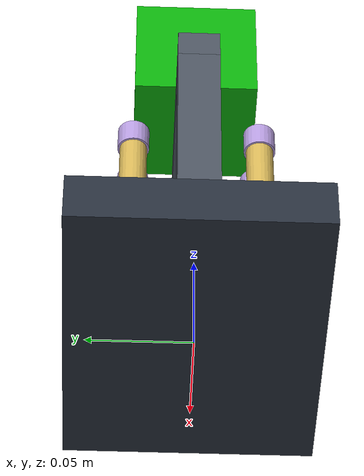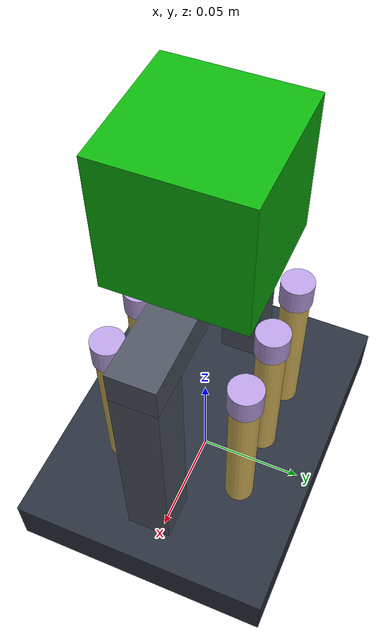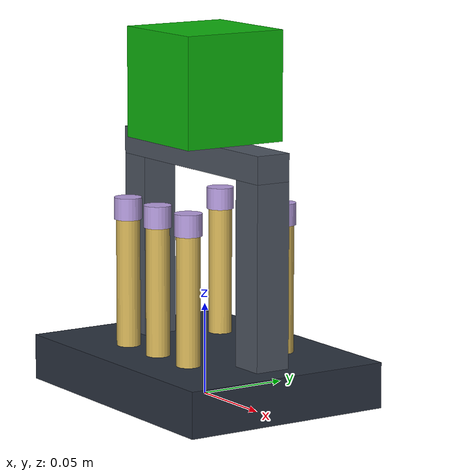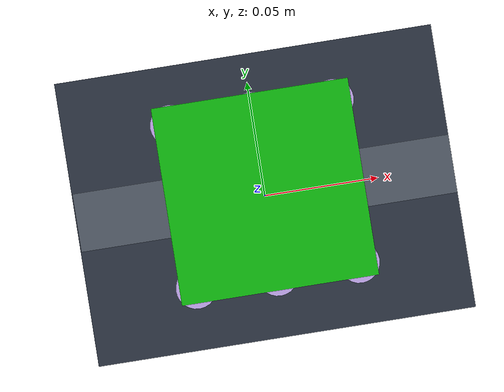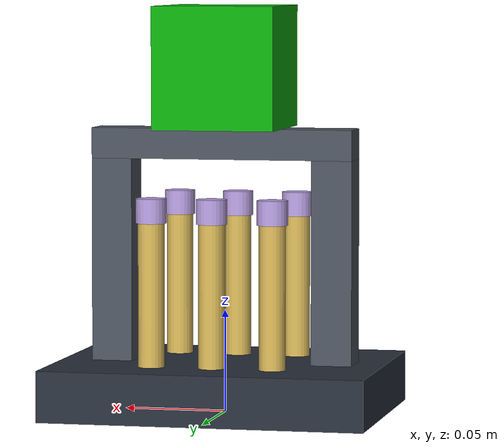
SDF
<?xml version="1.0" ?>
<sdf version="1.9">
  <model name="rack_green">
    <link name="link">

      <inertial>
        <pose>0 0 0.06 0 0 0</pose>
        <mass>0.30</mass>
        <inertia>
          <ixx>1.36e-3</ixx><ixy>0</ixy><ixz>0</ixz>
          <iyy>1.64e-3</iyy><iyz>0</iyz>
          <izz>1.00e-3</izz>
        </inertia>
      </inertial>

      <!-- tray -->
      <collision name="tray_collision">
        <pose>0 0 0.0125 0 0 0</pose>
        <geometry><box><size>0.16 0.12 0.025</size></box></geometry>
        <surface>
          <friction><ode><mu>0.7</mu><mu2>0.7</mu2></ode></friction>
          <contact><ode><kp>1e6</kp><kd>1.0</kd></ode></contact>
        </surface>
      </collision>
      <visual name="tray_visual">
        <pose>0 0 0.0125 0 0 0</pose>
        <geometry><box><size>0.16 0.12 0.025</size></box></geometry>
        <material>
          <ambient>0.10 0.12 0.16 1</ambient>
          <diffuse>0.16 0.19 0.24 1</diffuse>
          <specular>0.2 0.2 0.2 1</specular>
        </material>
      </visual>

      <!-- six tubes, 3 along x by 2 along y (visual only) -->
      <visual name="tube_0"><pose>-0.03  0.03 0.060 0 0 0</pose>
        <geometry><cylinder><radius>0.0065</radius><length>0.070</length></cylinder></geometry>
        <material><ambient>0.55 0.46 0.22 1</ambient><diffuse>0.85 0.72 0.35 1</diffuse></material></visual>
      <visual name="tube_1"><pose> 0.00  0.03 0.060 0 0 0</pose>
        <geometry><cylinder><radius>0.0065</radius><length>0.070</length></cylinder></geometry>
        <material><ambient>0.55 0.46 0.22 1</ambient><diffuse>0.85 0.72 0.35 1</diffuse></material></visual>
      <visual name="tube_2"><pose> 0.03  0.03 0.060 0 0 0</pose>
        <geometry><cylinder><radius>0.0065</radius><length>0.070</length></cylinder></geometry>
        <material><ambient>0.55 0.46 0.22 1</ambient><diffuse>0.85 0.72 0.35 1</diffuse></material></visual>
      <visual name="tube_3"><pose>-0.03 -0.03 0.060 0 0 0</pose>
        <geometry><cylinder><radius>0.0065</radius><length>0.070</length></cylinder></geometry>
        <material><ambient>0.55 0.46 0.22 1</ambient><diffuse>0.85 0.72 0.35 1</diffuse></material></visual>
      <visual name="tube_4"><pose> 0.00 -0.03 0.060 0 0 0</pose>
        <geometry><cylinder><radius>0.0065</radius><length>0.070</length></cylinder></geometry>
        <material><ambient>0.55 0.46 0.22 1</ambient><diffuse>0.85 0.72 0.35 1</diffuse></material></visual>
      <visual name="tube_5"><pose> 0.03 -0.03 0.060 0 0 0</pose>
        <geometry><cylinder><radius>0.0065</radius><length>0.070</length></cylinder></geometry>
        <material><ambient>0.55 0.46 0.22 1</ambient><diffuse>0.85 0.72 0.35 1</diffuse></material></visual>

      <!-- caps (lavender, i.e. EDTA tubes) -->
      <visual name="cap_0"><pose>-0.03  0.03 0.101 0 0 0</pose>
        <geometry><cylinder><radius>0.0075</radius><length>0.012</length></cylinder></geometry>
        <material><ambient>0.55 0.45 0.70 1</ambient><diffuse>0.72 0.62 0.88 1</diffuse></material></visual>
      <visual name="cap_1"><pose> 0.00  0.03 0.101 0 0 0</pose>
        <geometry><cylinder><radius>0.0075</radius><length>0.012</length></cylinder></geometry>
        <material><ambient>0.55 0.45 0.70 1</ambient><diffuse>0.72 0.62 0.88 1</diffuse></material></visual>
      <visual name="cap_2"><pose> 0.03  0.03 0.101 0 0 0</pose>
        <geometry><cylinder><radius>0.0075</radius><length>0.012</length></cylinder></geometry>
        <material><ambient>0.55 0.45 0.70 1</ambient><diffuse>0.72 0.62 0.88 1</diffuse></material></visual>
      <visual name="cap_3"><pose>-0.03 -0.03 0.101 0 0 0</pose>
        <geometry><cylinder><radius>0.0075</radius><length>0.012</length></cylinder></geometry>
        <material><ambient>0.55 0.45 0.70 1</ambient><diffuse>0.72 0.62 0.88 1</diffuse></material></visual>
      <visual name="cap_4"><pose> 0.00 -0.03 0.101 0 0 0</pose>
        <geometry><cylinder><radius>0.0075</radius><length>0.012</length></cylinder></geometry>
        <material><ambient>0.55 0.45 0.70 1</ambient><diffuse>0.72 0.62 0.88 1</diffuse></material></visual>
      <visual name="cap_5"><pose> 0.03 -0.03 0.101 0 0 0</pose>
        <geometry><cylinder><radius>0.0075</radius><length>0.012</length></cylinder></geometry>
        <material><ambient>0.55 0.45 0.70 1</ambient><diffuse>0.72 0.62 0.88 1</diffuse></material></visual>

      <!-- gantry: two posts either side of the tubes, plus a crossbar -->
      <collision name="post_left_collision">
        <pose>-0.055 0 0.075 0 0 0</pose>
        <geometry><box><size>0.02 0.02 0.10</size></box></geometry>
      </collision>
      <visual name="post_left_visual">
        <pose>-0.055 0 0.075 0 0 0</pose>
        <geometry><box><size>0.02 0.02 0.10</size></box></geometry>
        <material><ambient>0.20 0.22 0.26 1</ambient><diffuse>0.30 0.33 0.38 1</diffuse></material>
      </visual>
      <collision name="post_right_collision">
        <pose>0.055 0 0.075 0 0 0</pose>
        <geometry><box><size>0.02 0.02 0.10</size></box></geometry>
      </collision>
      <visual name="post_right_visual">
        <pose>0.055 0 0.075 0 0 0</pose>
        <geometry><box><size>0.02 0.02 0.10</size></box></geometry>
        <material><ambient>0.20 0.22 0.26 1</ambient><diffuse>0.30 0.33 0.38 1</diffuse></material>
      </visual>
      <collision name="crossbar_collision">
        <pose>0 0 0.1325 0 0 0</pose>
        <geometry><box><size>0.13 0.02 0.015</size></box></geometry>
      </collision>
      <visual name="crossbar_visual">
        <pose>0 0 0.1325 0 0 0</pose>
        <geometry><box><size>0.13 0.02 0.015</size></box></geometry>
        <material><ambient>0.20 0.22 0.26 1</ambient><diffuse>0.30 0.33 0.38 1</diffuse></material>
      </visual>

      <!-- grip block: what the Franka Hand actually closes on. Same 0.06 cube,
           same saturated colour and same mu as the box it replaces. -->
      <collision name="grip_collision">
        <pose>0 0 0.170 0 0 0</pose>
        <geometry><box><size>0.06 0.06 0.06</size></box></geometry>
        <surface>
          <friction><ode><mu>4.0</mu><mu2>4.0</mu2></ode></friction>
          <contact><ode><kp>1e6</kp><kd>1.0</kd></ode></contact>
        </surface>
      </collision>
      <visual name="grip_visual">
        <pose>0 0 0.170 0 0 0</pose>
        <geometry><box><size>0.06 0.06 0.06</size></box></geometry>
        <material>
          <ambient>0.05 0.7 0.05 1</ambient>
          <diffuse>0.05 0.7 0.05 1</diffuse>
          <specular>0.2 0.2 0.2 1</specular>
        </material>
      </visual>

    </link>
  </model>
</sdf>
